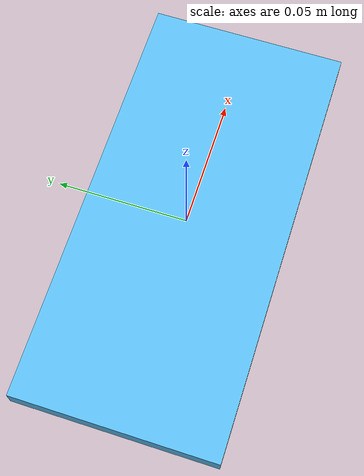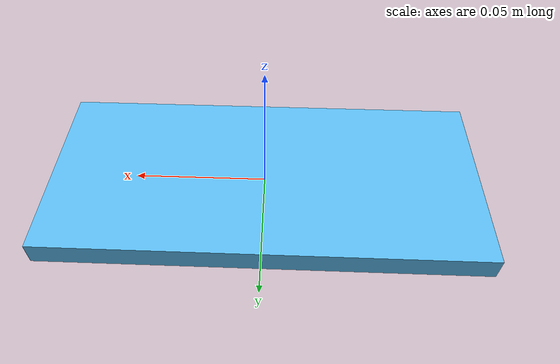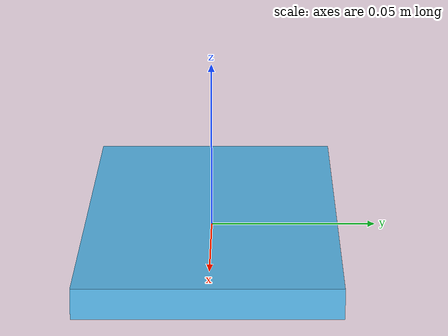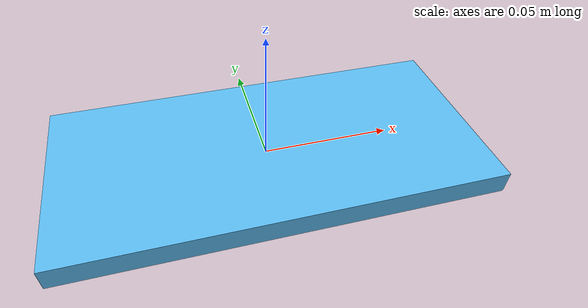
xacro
<?xml version="1.0"?>
<robot xmlns:xacro="http://www.ros.org/wiki/xacro" name="my_phone">

    <xacro:property name="phone_length" value="0.1631" />
    <xacro:property name="phone_width" value="0.076" />
    <xacro:property name="phone_height" value="0.0088" />

    <link name="base"/>

    <link name="phone">
        <visual>
            <geometry>
                <box size="${phone_length} ${phone_width} ${phone_height}" />
            </geometry>
            <origin xyz="0 0 0" rpy="0 0 0" />
        </visual>
    </link>

    <joint name="base_to_rectangle" type="fixed">
        <parent link="base"/>
        <child link="phone"/>
        <origin xyz="0 0 0" rpy="0 0 0"/>
    </joint>

</robot>
